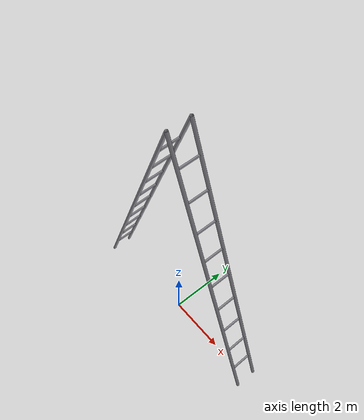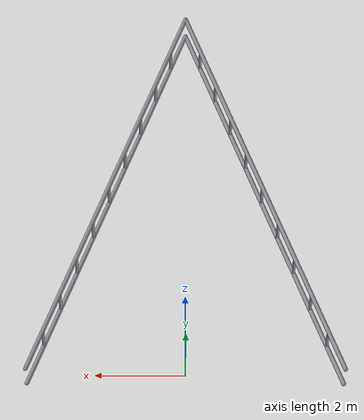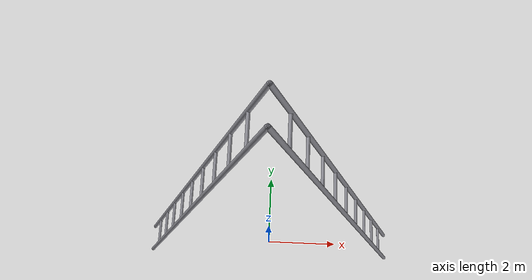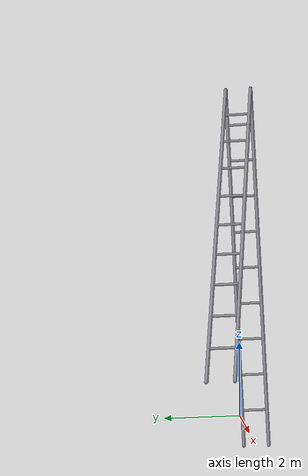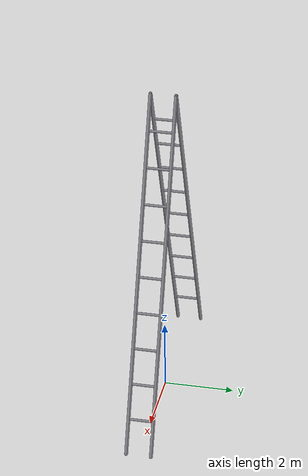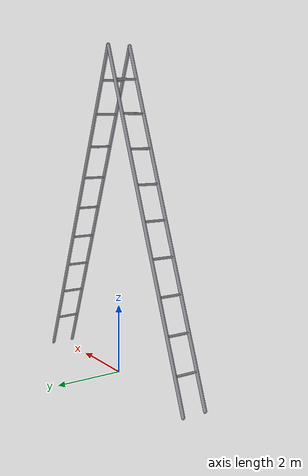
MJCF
<?xml version="1.0" encoding="UTF-8"?>
<mujoco model="a_frame_double_ladder">
  <compiler angle="degree"/>

  <default>
    <geom friction="1.2 0.01 0.001"
          condim="4"
          solref="0.005 1"
          solimp="0.95 0.99 0.001"
          rgba="0.55 0.55 0.58 1"/>
  </default>

  <worldbody>
    <!-- Left inclined ladder. -->

    <geom name="left_ladder_rail_1"
          type="capsule"
          fromto="-3.511234 -0.350000 0.000000  0.000000 -0.350000 9.363292"
          size="0.050"/>

    <geom name="left_ladder_rail_2"
          type="capsule"
          fromto="-3.511234 0.350000 0.000000  0.000000 0.350000 9.363292"
          size="0.050"/>

    <geom name="left_ladder_rung_01"
          type="capsule"
          fromto="-3.160111 -0.350000 0.936329  -3.160111 0.350000 0.936329"
          size="0.035"/>

    <site name="left_ladder_rung_01_grip"
          type="capsule"
          fromto="-3.160111 -0.350000 0.936329  -3.160111 0.350000 0.936329"
          size="0.075"
          group="3"
          rgba="0.15 0.95 0.25 0.25"/>

    <geom name="left_ladder_rung_02"
          type="capsule"
          fromto="-2.808988 -0.350000 1.872658  -2.808988 0.350000 1.872658"
          size="0.035"/>

    <site name="left_ladder_rung_02_grip"
          type="capsule"
          fromto="-2.808988 -0.350000 1.872658  -2.808988 0.350000 1.872658"
          size="0.075"
          group="3"
          rgba="0.15 0.95 0.25 0.25"/>

    <geom name="left_ladder_rung_03"
          type="capsule"
          fromto="-2.457864 -0.350000 2.808988  -2.457864 0.350000 2.808988"
          size="0.035"/>

    <site name="left_ladder_rung_03_grip"
          type="capsule"
          fromto="-2.457864 -0.350000 2.808988  -2.457864 0.350000 2.808988"
          size="0.075"
          group="3"
          rgba="0.15 0.95 0.25 0.25"/>

    <geom name="left_ladder_rung_04"
          type="capsule"
          fromto="-2.106741 -0.350000 3.745317  -2.106741 0.350000 3.745317"
          size="0.035"/>

    <site name="left_ladder_rung_04_grip"
          type="capsule"
          fromto="-2.106741 -0.350000 3.745317  -2.106741 0.350000 3.745317"
          size="0.075"
          group="3"
          rgba="0.15 0.95 0.25 0.25"/>

    <geom name="left_ladder_rung_05"
          type="capsule"
          fromto="-1.755617 -0.350000 4.681646  -1.755617 0.350000 4.681646"
          size="0.035"/>

    <site name="left_ladder_rung_05_grip"
          type="capsule"
          fromto="-1.755617 -0.350000 4.681646  -1.755617 0.350000 4.681646"
          size="0.075"
          group="3"
          rgba="0.15 0.95 0.25 0.25"/>

    <geom name="left_ladder_rung_06"
          type="capsule"
          fromto="-1.404494 -0.350000 5.617975  -1.404494 0.350000 5.617975"
          size="0.035"/>

    <site name="left_ladder_rung_06_grip"
          type="capsule"
          fromto="-1.404494 -0.350000 5.617975  -1.404494 0.350000 5.617975"
          size="0.075"
          group="3"
          rgba="0.15 0.95 0.25 0.25"/>

    <geom name="left_ladder_rung_07"
          type="capsule"
          fromto="-1.053370 -0.350000 6.554304  -1.053370 0.350000 6.554304"
          size="0.035"/>

    <site name="left_ladder_rung_07_grip"
          type="capsule"
          fromto="-1.053370 -0.350000 6.554304  -1.053370 0.350000 6.554304"
          size="0.075"
          group="3"
          rgba="0.15 0.95 0.25 0.25"/>

    <geom name="left_ladder_rung_08"
          type="capsule"
          fromto="-0.702247 -0.350000 7.490633  -0.702247 0.350000 7.490633"
          size="0.035"/>

    <site name="left_ladder_rung_08_grip"
          type="capsule"
          fromto="-0.702247 -0.350000 7.490633  -0.702247 0.350000 7.490633"
          size="0.075"
          group="3"
          rgba="0.15 0.95 0.25 0.25"/>

    <geom name="left_ladder_rung_09"
          type="capsule"
          fromto="-0.351123 -0.350000 8.426963  -0.351123 0.350000 8.426963"
          size="0.035"/>

    <site name="left_ladder_rung_09_grip"
          type="capsule"
          fromto="-0.351123 -0.350000 8.426963  -0.351123 0.350000 8.426963"
          size="0.075"
          group="3"
          rgba="0.15 0.95 0.25 0.25"/>

    <!-- Right inclined ladder. -->

    <geom name="right_ladder_rail_1"
          type="capsule"
          fromto="3.511234 -0.350000 0.000000  0.000000 -0.350000 9.363292"
          size="0.050"/>

    <geom name="right_ladder_rail_2"
          type="capsule"
          fromto="3.511234 0.350000 0.000000  0.000000 0.350000 9.363292"
          size="0.050"/>

    <geom name="right_ladder_rung_01"
          type="capsule"
          fromto="3.160111 -0.350000 0.936329  3.160111 0.350000 0.936329"
          size="0.035"/>

    <site name="right_ladder_rung_01_grip"
          type="capsule"
          fromto="3.160111 -0.350000 0.936329  3.160111 0.350000 0.936329"
          size="0.075"
          group="3"
          rgba="0.15 0.95 0.25 0.25"/>

    <geom name="right_ladder_rung_02"
          type="capsule"
          fromto="2.808988 -0.350000 1.872658  2.808988 0.350000 1.872658"
          size="0.035"/>

    <site name="right_ladder_rung_02_grip"
          type="capsule"
          fromto="2.808988 -0.350000 1.872658  2.808988 0.350000 1.872658"
          size="0.075"
          group="3"
          rgba="0.15 0.95 0.25 0.25"/>

    <geom name="right_ladder_rung_03"
          type="capsule"
          fromto="2.457864 -0.350000 2.808988  2.457864 0.350000 2.808988"
          size="0.035"/>

    <site name="right_ladder_rung_03_grip"
          type="capsule"
          fromto="2.457864 -0.350000 2.808988  2.457864 0.350000 2.808988"
          size="0.075"
          group="3"
          rgba="0.15 0.95 0.25 0.25"/>

    <geom name="right_ladder_rung_04"
          type="capsule"
          fromto="2.106741 -0.350000 3.745317  2.106741 0.350000 3.745317"
          size="0.035"/>

    <site name="right_ladder_rung_04_grip"
          type="capsule"
          fromto="2.106741 -0.350000 3.745317  2.106741 0.350000 3.745317"
          size="0.075"
          group="3"
          rgba="0.15 0.95 0.25 0.25"/>

    <geom name="right_ladder_rung_05"
          type="capsule"
          fromto="1.755617 -0.350000 4.681646  1.755617 0.350000 4.681646"
          size="0.035"/>

    <site name="right_ladder_rung_05_grip"
          type="capsule"
          fromto="1.755617 -0.350000 4.681646  1.755617 0.350000 4.681646"
          size="0.075"
          group="3"
          rgba="0.15 0.95 0.25 0.25"/>

    <geom name="right_ladder_rung_06"
          type="capsule"
          fromto="1.404494 -0.350000 5.617975  1.404494 0.350000 5.617975"
          size="0.035"/>

    <site name="right_ladder_rung_06_grip"
          type="capsule"
          fromto="1.404494 -0.350000 5.617975  1.404494 0.350000 5.617975"
          size="0.075"
          group="3"
          rgba="0.15 0.95 0.25 0.25"/>

    <geom name="right_ladder_rung_07"
          type="capsule"
          fromto="1.053370 -0.350000 6.554304  1.053370 0.350000 6.554304"
          size="0.035"/>

    <site name="right_ladder_rung_07_grip"
          type="capsule"
          fromto="1.053370 -0.350000 6.554304  1.053370 0.350000 6.554304"
          size="0.075"
          group="3"
          rgba="0.15 0.95 0.25 0.25"/>

    <geom name="right_ladder_rung_08"
          type="capsule"
          fromto="0.702247 -0.350000 7.490633  0.702247 0.350000 7.490633"
          size="0.035"/>

    <site name="right_ladder_rung_08_grip"
          type="capsule"
          fromto="0.702247 -0.350000 7.490633  0.702247 0.350000 7.490633"
          size="0.075"
          group="3"
          rgba="0.15 0.95 0.25 0.25"/>

    <geom name="right_ladder_rung_09"
          type="capsule"
          fromto="0.351123 -0.350000 8.426963  0.351123 0.350000 8.426963"
          size="0.035"/>

    <site name="right_ladder_rung_09_grip"
          type="capsule"
          fromto="0.351123 -0.350000 8.426963  0.351123 0.350000 8.426963"
          size="0.075"
          group="3"
          rgba="0.15 0.95 0.25 0.25"/>
  </worldbody>
</mujoco>
